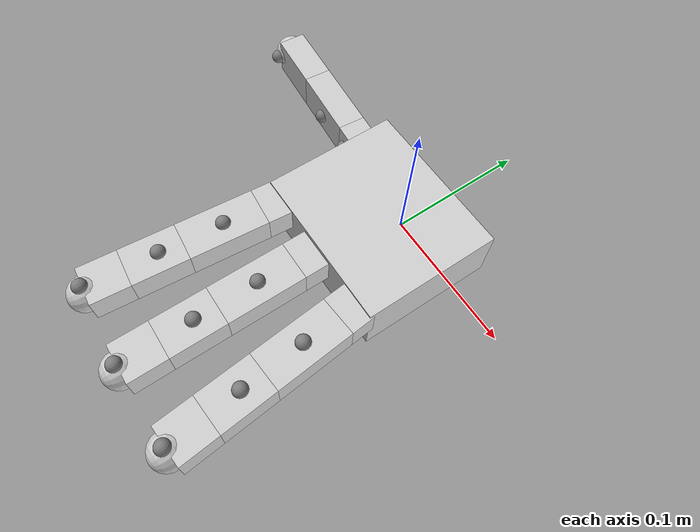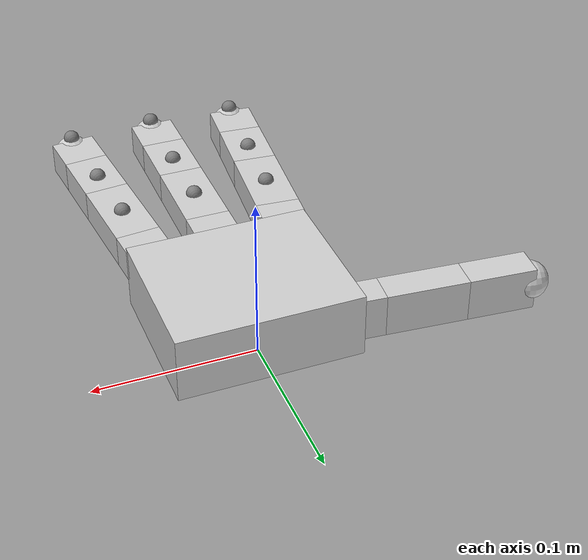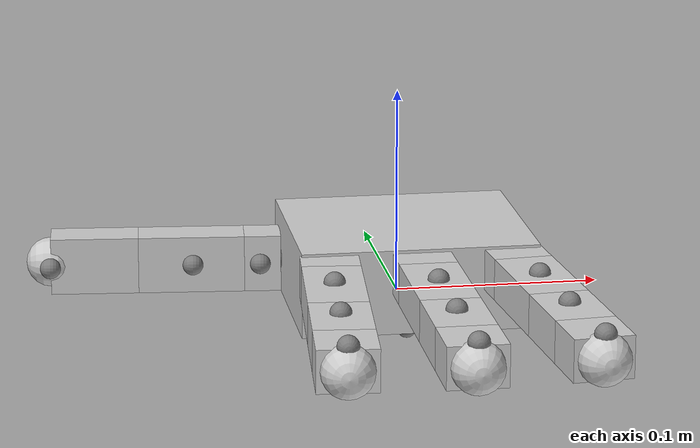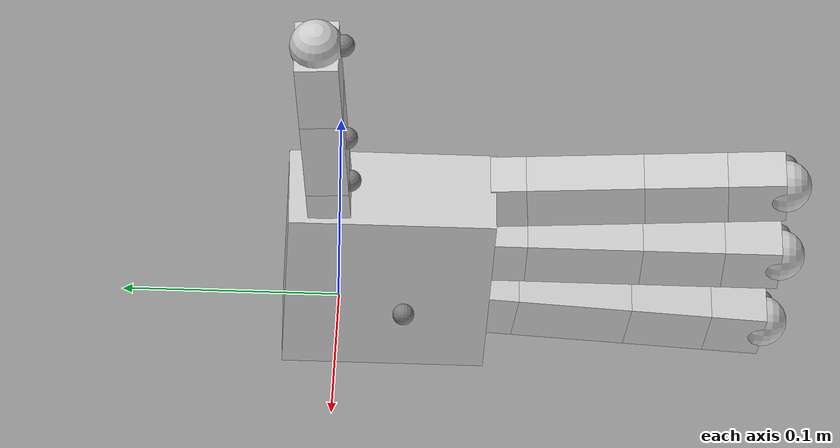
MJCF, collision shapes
<mujoco model="allegro_hand_right-manipulator">
  <compiler angle="radian" meshdir="assets" autolimits="true"/>

  <default>
    <joint damping="0.1" armature="0.01" frictionloss="0.01" />
    <!-- default visual and collision attributes -->
    <default class="plastic">
        <geom solimp="0.5 0.99 0.0001" solref="0.005 1"/>
        <default class="plastic_visual">
            <geom type="mesh" material="black" contype="0" conaffinity="0" group="2"/>
        </default>
        <default class="plastic_collision">
            <geom group="3" material="gray"/>
        </default>
    </default>

  </default>
  <asset>
    <material name="black" specular="0.5" shininess="0.25" rgba="0.2 0.2 0.2 1"/>
    <material name="off_white" specular="0.5" shininess="0.25" rgba="0.9 0.9 0.9 1"/>
    <material name="gray" specular="0.0" shininess="0.25" rgba="0.80848 0.80848 0.80848 1"/>

    <mesh name="base_link" file="base_link.stl"/>
    <mesh name="link_0.0" file="link_0_0.stl"/>
    <mesh name="link_1.0" file="link_1_0.stl"/>
    <mesh name="link_2.0" file="link_2_0.stl"/>
    <mesh name="link_3.0" file="link_3_0.stl"/>
    <mesh name="link_3.0_tip" file="link_3_0_tip.stl"/>
    <mesh name="link_12.0_right" file="link_12_0_right.stl"/>
    <mesh name="link_13.0" file="link_13_0.stl"/>
    <mesh name="link_14.0" file="link_14_0.stl"/>
    <mesh name="link_15.0" file="link_15_0.stl"/>
    <mesh name="link_15.0_tip" file="link_15_0_tip.stl"/>
  </asset>
  <worldbody>
    <body name="base_link" pos="0. -0.07 0.03" quat="0.5 0.5 -0.5 0.5">
    <!-- attachment site for a vive tracker to visualize the tracker pose -->
    <site name="attachment_site" pos="-0.04 0 -0.04" quat="-0.707 0 0 -0.707"/>
    <geom class="plastic_visual" mesh="base_link"/>
    <geom name="base_link_coll"  class="plastic_collision" size="0.0204 0.0565 0.0475" pos="-0.0093 0 -0.0475" type="box"/>

    <!-- Index finger -->
    <body name="link_0.0" pos="0 0.0435 -0.001542" quat="0.999048 -0.0436194 0 0">
      <site name="teleop-rh_if_angle0" user="0 1 0 0 0"/>
      <joint name="joint_0.0" pos="0 0 0" axis="0 0 1" range="-0.47 0.47"/>
      <geom class="plastic_visual" mesh="link_0.0"/>
      <geom class="plastic_collision" size="0.0098 0.01375 0.0082" pos="0 0 0.0082" type="box"/>
      <body name="link_1.0" pos="0 0 0.0164">
        <site name="keypoint-hand_bodies-if_proximal" pos="0.01 0 0.026"/>
        <site name="teleop-rh_if_angle1" user="0 1 0 0 0"/>
        <joint name="joint_1.0" pos="0 0 0" axis="0 1 0" range="-0.196 1.61"/>
        <geom class="plastic_visual" mesh="link_1.0"/>
        <geom class="plastic_collision" size="0.0098 0.01375 0.027" pos="0 0 0.027" type="box"/>
        <body name="link_2.0" pos="0 0 0.054">
          <site name="keypoint-hand_bodies-if_inter" pos="0.01 0 0.016"/>
          <site name="teleop-rh_if_flexion" user="0 1.571 0 0 0"/>
          <joint name="joint_2.0" pos="0 0 0" axis="0 1 0" range="-0.174 1.709"/>
          <geom class="plastic_visual" mesh="link_2.0"/>
          <geom class="plastic_collision" size="0.0098 0.01375 0.0192" pos="0 0 0.0192" type="box"/>

          <!-- Fingertip of index finger -->
          <body name="link_3.0" pos="0 0 0.0384">
            <site name="keypoint-hand_bodies-if_distal" pos="0.0115 0 0.0275"/>
            <site name="keypoint-fingertips-if" pos="0.0115 0 0.0275"/>
            <site name="teleop-rh_if_flexion" user="0 1.571 0 0 0"/>
            <joint name="joint_3.0" pos="0 0 0" axis="0 1 0" range="-0.227 1.618"/>
            <geom class="plastic_visual" mesh="link_3.0"/>
            <geom class="plastic_collision" size="0.0098 0.01375 0.01335" pos="0 0 0.01335" type="box"/>
            <geom pos="0 0 0.0267" class="plastic_visual" material="off_white" mesh="link_3.0_tip"/>
            <geom class="plastic_collision" size="0.012" pos="0 0 0.0267"/>
          </body>
        </body>
      </body>
    </body>

    <!-- Middle finger -->
    <body name="link_4.0" pos="0 0 0.0007">
      <site name="teleop-rh_mf_angle0" user="0 1 0 0 0"/>
      <joint name="joint_4.0" pos="0 0 0" axis="0 0 1" range="-0.47 0.47"/>
      <geom class="plastic_visual" mesh="link_0.0"/>
      <geom class="plastic_collision" size="0.0098 0.01375 0.0082" pos="0 0 0.0082" type="box"/>
      <body name="link_5.0" pos="0 0 0.0164">
        <site name="keypoint-hand_bodies-mf_proximal" pos="0.01 0 0.026"/>
        <site name="teleop-rh_mf_angle1" user="0 1 0 0 0"/>
        <joint name="joint_5.0" pos="0 0 0" axis="0 1 0" range="-0.196 1.61"/>
        <geom class="plastic_visual" mesh="link_1.0"/>
        <geom class="plastic_collision" size="0.0098 0.01375 0.027" pos="0 0 0.027" type="box"/>
        <body name="link_6.0" pos="0 0 0.054">
          <site name="keypoint-hand_bodies-mf_inter" pos="0.01 0 0.016"/>
          <site name="teleop-rh_mf_flexion" user="0 1.571 0 0 0"/>
          <joint name="joint_6.0" pos="0 0 0" axis="0 1 0" range="-0.174 1.709"/>
          <geom class="plastic_visual" mesh="link_2.0"/>
          <geom class="plastic_collision" size="0.0098 0.01375 0.0192" pos="0 0 0.0192" type="box"/>

          <!-- Fingertip of middle finger -->
          <body name="link_7.0" pos="0 0 0.0384">
            <site name="keypoint-hand_bodies-mf_distal" pos="0.0115 0 0.0275"/>
            <site name="keypoint-fingertips-mf" pos="0.0115 0 0.0275"/>
            <site name="teleop-rh_mf_flexion" user="0 1.571 0 0 0"/>
            <joint name="joint_7.0" pos="0 0 0" axis="0 1 0" range="-0.227 1.618"/>
            <geom class="plastic_visual" mesh="link_3.0"/>
            <geom class="plastic_collision" size="0.0098 0.01375 0.01335" pos="0 0 0.01335" type="box"/>
            <geom pos="0 0 0.0267" class="plastic_visual" material="off_white" mesh="link_3.0_tip"/>
            <geom class="plastic_collision" size="0.012" pos="0 0 0.0267"/>
          </body>
        </body>
      </body>
    </body>

    <!-- Ring finger -->
    <body name="link_8.0" pos="0 -0.0435 -0.001542" quat="0.999048 0.0436194 0 0">
      <site name="teleop-rh_rf_angle0" user="0 1 0 0 0"/>
      <joint name="joint_8.0" pos="0 0 0" axis="0 0 1" range="-0.47 0.47"/>
      <geom class="plastic_visual" mesh="link_0.0"/>
      <geom class="plastic_collision" size="0.0098 0.01375 0.0082" pos="0 0 0.0082" type="box"/>
      <body name="link_9.0" pos="0 0 0.0164">
        <site name="keypoint-hand_bodies-rf_proximal" pos="0.01 0 0.026"/>
        <site name="teleop-rh_rf_angle1" user="0 1 0 0 0"/>
        <joint name="joint_9.0" pos="0 0 0" axis="0 1 0" range="-0.196 1.61"/>
        <geom class="plastic_visual" mesh="link_1.0"/>
        <geom class="plastic_collision" size="0.0098 0.01375 0.027" pos="0 0 0.027" type="box"/>
        <body name="link_10.0" pos="0 0 0.054">
          <site name="keypoint-hand_bodies-rf_inter" pos="0.01 0 0.016"/>
          <site name="teleop-rh_rf_flexion" user="0 1.571 0 0 0"/>
          <joint name="joint_10.0" pos="0 0 0" axis="0 1 0" range="-0.174 1.709"/>
          <geom class="plastic_visual" mesh="link_2.0"/>
          <geom class="plastic_collision" size="0.0098 0.01375 0.0192" pos="0 0 0.0192" type="box"/>

          <!-- Fingertip of ring finger -->
          <body name="link_11.0" pos="0 0 0.0384">
            <site name="keypoint-hand_bodies-rf_distal" pos="0.0115 0 0.0275"/>
            <site name="keypoint-fingertips-rf" pos="0.0115 0 0.0275"/>
            <site name="teleop-rh_rf_flexion" user="0 1.571 0 0 0"/>
            <joint name="joint_11.0" pos="0 0 0" axis="0 1 0" range="-0.227 1.618"/>
            <geom class="plastic_visual" mesh="link_3.0"/>
            <geom class="plastic_collision" size="0.0098 0.01375 0.01335" pos="0 0 0.01335" type="box"/>
            <geom pos="0 0 0.0267" class="plastic_visual" material="off_white" mesh="link_3.0_tip"/>
            <geom class="plastic_collision" size="0.012" pos="0 0 0.0267"/>
          </body>
        </body>
      </body>
    </body>

    <!-- Thumb -->
    <body name="link_12.0" pos="-0.0182 0.019333 -0.045987" quat="0.477714 -0.521334 -0.521334 -0.477714">
      <site name="teleop-rh_th_angle0" user="1.571 1 0 0 0"/>
      <joint name="joint_12.0" pos="0 0 0" axis="-1 0 0" range="0.263 1.396"/>
      <geom class="plastic_visual" mesh="link_12.0_right"/>
      <geom name="link_12.0_coll"  class="plastic_collision" size="0.0179 0.017 0.02275" pos="-0.0179 0.009 0.0145" type="box"/>
      <body name="link_13.0" pos="-0.027 0.005 0.0399">
        <site name="keypoint-hand_bodies-th_proximal" pos="0.01 0 0.01"/>
        <!-- No way of mapping senseglove data to this joint appropriately -->
        <site name="teleop-rh_th_angle0" user="0 0 0 0 0"/>
        <joint name="joint_13.0" pos="0 0 0" axis="0 0 1" range="-0.105 1.163"/>
        <geom class="plastic_visual" mesh="link_13.0"/>
        <geom name="link_13.0_coll" class="plastic_collision" size="0.0098 0.01375 0.00885" pos="0 0 0.00885" type="box"/>
        <body name="link_14.0" pos="0 0 0.0177">
          <site name="keypoint-hand_bodies-th_inter" pos="0.01 0 0.025"/>
          <site name="teleop-rh_th_angle1" user="0 1 0 0 0"/>
          <joint name="joint_14.0" pos="0 0 0" axis="0 1 0" range="-0.189 1.644"/>
          <geom class="plastic_visual" mesh="link_14.0"/>
          <geom class="plastic_collision" size="0.0098 0.01375 0.0257" pos="0 0 0.0257" type="box"/>

          <!-- Fingertip of thumb -->
          <body name="link_15.0" pos="0 0 0.0514">
            <site name="keypoint-hand_bodies-th_distal" pos="0.012 0 0.0425"/>
            <site name="keypoint-fingertips-th" pos="0.012 0 0.0425"/>
            <site name="teleop-rh_th_angle0" user="0 0 0 0 0"/>
            <site name="teleop-rh_th_flexion" user="0 1.571 0 0 0"/>
            <joint name="joint_15.0" pos="0 0 0" axis="0 1 0" range="-0.162 1.719"/>
            <geom class="plastic_visual" mesh="link_15.0"/>
            <geom class="plastic_collision" size="0.0098 0.01375 0.02115" pos="0 0 0.02115" type="box"/>
            <geom pos="0 0 0.0423" class="plastic_visual" material="off_white" mesh="link_15.0_tip"/>
            <geom class="plastic_collision" size="0.012" pos="0 0 0.0423"/>
          </body>
        </body>
      </body>
    </body>
    </body>
  </worldbody>

  <!-- exclude some problematic self-collisions -->
    <contact>
      <!-- disable contact of proximal thumb bodies with the palm -->
      <pair geom1="base_link_coll" geom2="link_12.0_coll" condim="1"/>
      <pair geom1="base_link_coll" geom2="link_13.0_coll" condim="1"/>
      <pair geom1="link_12.0_coll" geom2="link_13.0_coll" condim="1"/>
      <exclude body1="base_link" body2="link_12.0"/>
      <exclude body1="base_link" body2="link_13.0"/>
    </contact>

  <actuator>
    <position name="a_joint_0.0" joint="joint_0.0"/>
    <position name="a_joint_1.0" joint="joint_1.0"/>
    <position name="a_joint_2.0" joint="joint_2.0"/>
    <position name="a_joint_3.0" joint="joint_3.0"/>
    <position name="a_joint_4.0" joint="joint_4.0"/>
    <position name="a_joint_5.0" joint="joint_5.0"/>
    <position name="a_joint_6.0" joint="joint_6.0"/>
    <position name="a_joint_7.0" joint="joint_7.0"/>
    <position name="a_joint_8.0" joint="joint_8.0"/>
    <position name="a_joint_9.0" joint="joint_9.0"/>
    <position name="a_joint_10.0" joint="joint_10.0"/>
    <position name="a_joint_11.0" joint="joint_11.0"/>
    <position name="a_joint_12.0" joint="joint_12.0"/>
    <position name="a_joint_13.0" joint="joint_13.0"/>
    <position name="a_joint_14.0" joint="joint_14.0"/>
    <position name="a_joint_15.0" joint="joint_15.0"/>
  </actuator>

  <keyframe>
    <key name="home" qpos="0 0 0 0 0 0 0 0 0 0 0 0 0 0 0 0" ctrl="0 0 0 0 0 0 0 0 0 0 0 0 0 0 0 0"/>
    <key name="initial" qpos="0 0 0 0 0 0 0 0 0 0 0 0 0 0 0 0" ctrl="0 0 0 0 0 0 0 0 0 0 0 0 0 0 0 0"/>
  </keyframe>
</mujoco>
